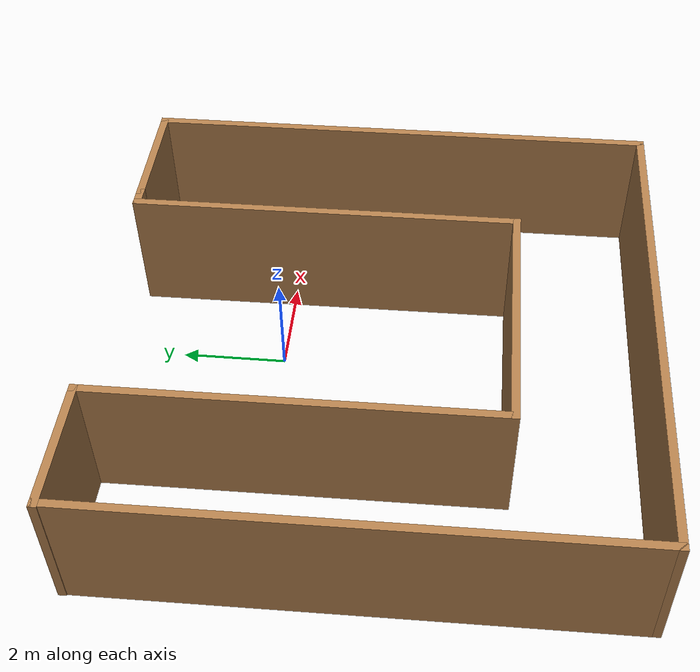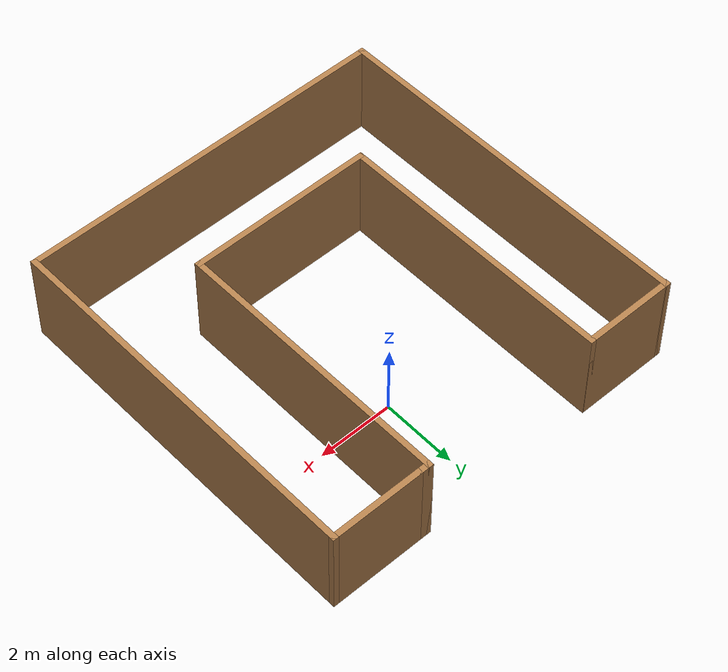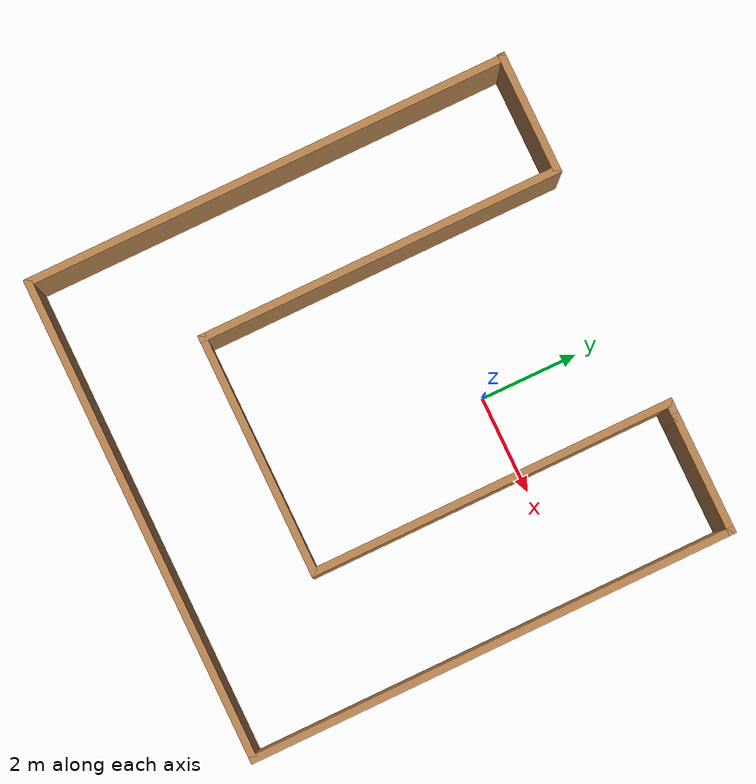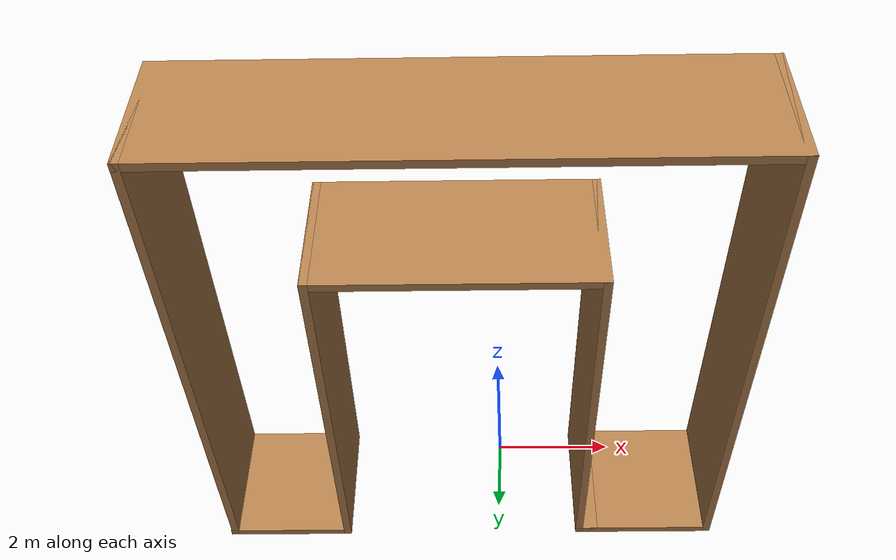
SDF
<?xml version='1.0'?>
<sdf version='1.6'>
  <model name='oficina'>
    <pose frame=''>-0.602693 -1.94574 0 0 -0 0</pose>
    <link name='Wall_10'>
      <collision name='Wall_10_Collision'>
        <geometry>
          <box>
            <size>10 0.15 2.5</size>
          </box>
        </geometry>
        <pose frame=''>0 0 1.25 0 -0 0</pose>
      </collision>
      <visual name='Wall_10_Visual'>
        <pose frame=''>0 0 1.25 0 -0 0</pose>
        <geometry>
          <box>
            <size>10 0.15 2.5</size>
          </box>
        </geometry>
        <material>
          <script>
            <uri>file://media/materials/scripts/gazebo.material</uri>
            <name>Gazebo/Wood</name>
          </script>
          <ambient>1 1 1 1</ambient>
        </material>
        <meta>
          <layer>0</layer>
        </meta>
      </visual>
      <pose frame=''>0.008695 -4.925 0 0 -0 0</pose>
    </link>
    <link name='Wall_12'>
      <collision name='Wall_12_Collision'>
        <geometry>
          <box>
            <size>10 0.15 2.5</size>
          </box>
        </geometry>
        <pose frame=''>0 0 1.25 0 -0 0</pose>
      </collision>
      <visual name='Wall_12_Visual'>
        <pose frame=''>0 0 1.25 0 -0 0</pose>
        <geometry>
          <box>
            <size>10 0.15 2.5</size>
          </box>
        </geometry>
        <material>
          <script>
            <uri>file://media/materials/scripts/gazebo.material</uri>
            <name>Gazebo/Wood</name>
          </script>
          <ambient>1 1 1 1</ambient>
        </material>
        <meta>
          <layer>0</layer>
        </meta>
      </visual>
      <pose frame=''>4.9337 0 0 0 -0 1.5708</pose>
    </link>
    <link name='Wall_13'>
      <collision name='Wall_13_Collision'>
        <geometry>
          <box>
            <size>2.5 0.15 2.5</size>
          </box>
        </geometry>
        <pose frame=''>0 0 1.25 0 -0 0</pose>
      </collision>
      <visual name='Wall_13_Visual'>
        <pose frame=''>0 0 1.25 0 -0 0</pose>
        <geometry>
          <box>
            <size>2.5 0.15 2.5</size>
          </box>
        </geometry>
        <material>
          <script>
            <uri>file://media/materials/scripts/gazebo.material</uri>
            <name>Gazebo/Wood</name>
          </script>
          <ambient>1 1 1 1</ambient>
        </material>
        <meta>
          <layer>0</layer>
        </meta>
      </visual>
      <pose frame=''>3.75869 4.925 0 0 -0 3.14159</pose>
    </link>
    <link name='Wall_31'>
      <collision name='Wall_31_Collision'>
        <geometry>
          <box>
            <size>10 0.15 2.5</size>
          </box>
        </geometry>
        <pose frame=''>0 0 1.25 0 -0 0</pose>
      </collision>
      <visual name='Wall_31_Visual'>
        <pose frame=''>0 0 1.25 0 -0 0</pose>
        <geometry>
          <box>
            <size>10 0.15 2.5</size>
          </box>
        </geometry>
        <material>
          <script>
            <uri>file://media/materials/scripts/gazebo.material</uri>
            <name>Gazebo/Wood</name>
          </script>
          <ambient>1 1 1 1</ambient>
        </material>
        <meta>
          <layer>0</layer>
        </meta>
      </visual>
      <pose frame=''>-4.91631 0 0 0 -0 1.5708</pose>
    </link>
    <link name='Wall_32'>
      <collision name='Wall_32_Collision'>
        <geometry>
          <box>
            <size>2.5 0.15 2.5</size>
          </box>
        </geometry>
        <pose frame=''>0 0 1.25 0 -0 0</pose>
      </collision>
      <visual name='Wall_32_Visual'>
        <pose frame=''>0 0 1.25 0 -0 0</pose>
        <geometry>
          <box>
            <size>2.5 0.15 2.5</size>
          </box>
        </geometry>
        <material>
          <script>
            <uri>file://media/materials/scripts/gazebo.material</uri>
            <name>Gazebo/Wood</name>
          </script>
          <ambient>1 1 1 1</ambient>
        </material>
        <meta>
          <layer>0</layer>
        </meta>
      </visual>
      <pose frame=''>-3.7587 4.925 0 0 -0 0</pose>
    </link>
    <link name='Wall_33'>
      <collision name='Wall_33_Collision'>
        <geometry>
          <box>
            <size>7.5 0.15 2.5</size>
          </box>
        </geometry>
        <pose frame=''>0 0 1.25 0 -0 0</pose>
      </collision>
      <visual name='Wall_33_Visual'>
        <pose frame=''>0 0 1.25 0 -0 0</pose>
        <geometry>
          <box>
            <size>7.5 0.15 2.5</size>
          </box>
        </geometry>
        <material>
          <script>
            <uri>file://media/materials/scripts/gazebo.material</uri>
            <name>Gazebo/Wood</name>
          </script>
          <ambient>1 1 1 1</ambient>
        </material>
        <meta>
          <layer>0</layer>
        </meta>
      </visual>
      <pose frame=''>-2.5663 1.25 0 0 -0 -1.5708</pose>
    </link>
    <link name='Wall_34'>
      <collision name='Wall_34_Collision'>
        <geometry>
          <box>
            <size>5 0.15 2.5</size>
          </box>
        </geometry>
        <pose frame=''>0 0 1.25 0 -0 0</pose>
      </collision>
      <visual name='Wall_34_Visual'>
        <pose frame=''>0 0 1.25 0 -0 0</pose>
        <geometry>
          <box>
            <size>5 0.15 2.5</size>
          </box>
        </geometry>
        <material>
          <script>
            <uri>file://media/materials/scripts/gazebo.material</uri>
            <name>Gazebo/Wood</name>
          </script>
          <ambient>1 1 1 1</ambient>
        </material>
        <meta>
          <layer>0</layer>
        </meta>
      </visual>
      <pose frame=''>-0.141305 -2.425 0 0 -0 0</pose>
    </link>
    <link name='Wall_35'>
      <collision name='Wall_35_Collision'>
        <geometry>
          <box>
            <size>7.5 0.15 2.5</size>
          </box>
        </geometry>
        <pose frame=''>0 0 1.25 0 -0 0</pose>
      </collision>
      <visual name='Wall_35_Visual'>
        <pose frame=''>0 0 1.25 0 -0 0</pose>
        <geometry>
          <box>
            <size>7.5 0.15 2.5</size>
          </box>
        </geometry>
        <material>
          <script>
            <uri>file://media/materials/scripts/gazebo.material</uri>
            <name>Gazebo/Wood</name>
          </script>
          <ambient>1 1 1 1</ambient>
        </material>
        <meta>
          <layer>0</layer>
        </meta>
      </visual>
      <pose frame=''>2.28369 1.25 0 0 -0 1.5708</pose>
    </link>
    <link name='Wall_36'>
      <collision name='Wall_36_Collision'>
        <geometry>
          <box>
            <size>0.45 0.15 2.5</size>
          </box>
        </geometry>
        <pose frame=''>0 0 1.25 0 -0 0</pose>
      </collision>
      <visual name='Wall_36_Visual'>
        <pose frame=''>0 0 1.25 0 -0 0</pose>
        <geometry>
          <box>
            <size>0.45 0.15 2.5</size>
          </box>
        </geometry>
        <material>
          <script>
            <uri>file://media/materials/scripts/gazebo.material</uri>
            <name>Gazebo/Wood</name>
          </script>
          <ambient>1 1 1 1</ambient>
        </material>
        <meta>
          <layer>0</layer>
        </meta>
      </visual>
      <pose frame=''>2.4337 4.925 0 0 -0 0</pose>
    </link>
    <static>1</static>
  </model>
</sdf>
